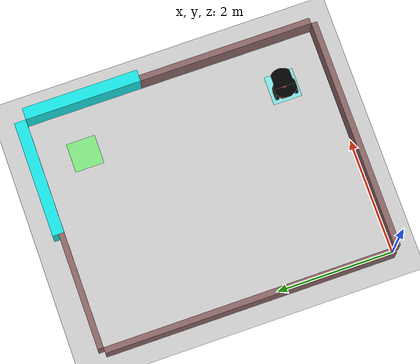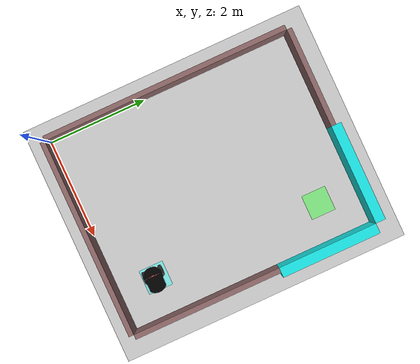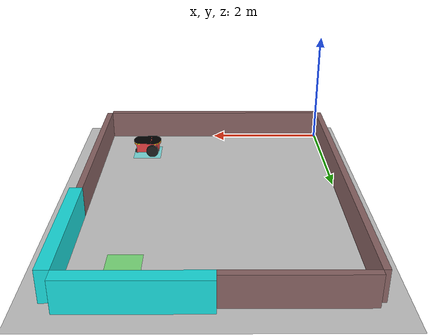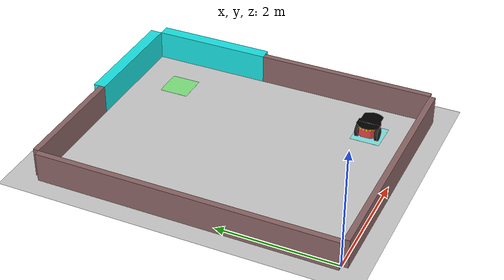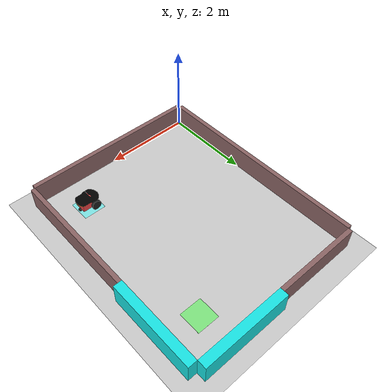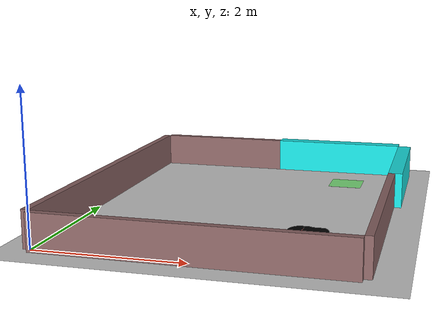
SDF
<sdf version="1.6">
 <world name="pioneer3_world">
  <physics name="1ms" type="ignored">
   <max_step_size>0.001</max_step_size>
   <real_time_factor>1.0</real_time_factor>
  </physics>
  <plugin filename="gz-sim-physics-system" name="gz::sim::systems::Physics"/>
  <plugin filename="gz-sim-sensors-system" name="gz::sim::systems::Sensors">
   <render_engine>ogre2</render_engine>
  </plugin>
  <plugin filename="gz-sim-user-commands-system" name="gz::sim::systems::UserCommands"/>
  <plugin filename="gz-sim-scene-broadcaster-system" name="gz::sim::systems::SceneBroadcaster"/>
  <plugin filename="gz-sim-contact-system" name="gz::sim::systems::Contact"/>
  <light type="directional" name="sun">
   <cast_shadows>false</cast_shadows>
   <pose>0 0 10 0 0 0</pose>
   <diffuse>0.8 0.8 0.8 1</diffuse>
   <specular>0.2 0.2 0.2 1</specular>
   <attenuation>
    <range>1000</range>
    <constant>0.9</constant>
    <linear>0.01</linear>
    <quadratic>0.001</quadratic>
   </attenuation>
   <direction>-0.5 0.1 -0.9</direction>
  </light>
  <model name="ground_plane">
   <static>true</static>
   <link name="link">
    <collision name="collision">
     <geometry><plane><normal>0 0 1</normal><size>100 100</size></plane></geometry>
    </collision>
    <visual name="visual">
     <geometry><plane><normal>0 0 1</normal><size>100 100</size></plane></geometry>
     <material>
      <ambient>0.8 0.8 0.8 1</ambient>
      <diffuse>0.8 0.8 0.8 1</diffuse>
      <specular>0.8 0.8 0.8 1</specular>
     </material>
    </visual>
   </link>
  </model>
  <include><uri>model://pioneer3dx/pioneer3dx.sdf</uri><pose>3.25 0.75 0 0 0 -3.14159265</pose></include>
  <model name="obstLoc1">
   <static>true</static>
   <pose>4.1 4 0.25 0 0 0</pose>
   <link name="obstLoc1_link">
    <collision name="obstLoc1_collision"><geometry><box><size>0.2 2 0.5</size></box></geometry></collision>
    <visual name="obstLoc1_visual">
     <geometry><box><size>0.2 2 0.5</size></box></geometry>
     <material>
      <ambient>0.1 0.9 0.9 1</ambient>
      <diffuse>0.1 0.9 0.9 1</diffuse>
      <specular>0.1 0.9 0.9 1</specular>
     </material>
    </visual>
   </link>
  </model>
  <model name="obstLoc2">
   <static>true</static>
   <pose>3 5.1 0.25 0 0 0</pose>
   <link name="obstLoc2_link">
    <collision name="obstLoc2_collision"><geometry><box><size>2 0.2 0.5</size></box></geometry></collision>
    <visual name="obstLoc2_visual">
     <geometry><box><size>2 0.2 0.5</size></box></geometry>
     <material>
      <ambient>0.1 0.9 0.9 1</ambient>
      <diffuse>0.1 0.9 0.9 1</diffuse>
      <specular>0.1 0.9 0.9 1</specular>
     </material>
    </visual>
   </link>
  </model>
  <model name="q0_indicator">
   <static>true</static>
   <pose>3.25 0.75 0.001 0 0 0</pose>
   <link name="q0_indicator_link">
    <visual name="q0_indicator_visual">
     <geometry><plane><size>0.5 0.5</size></plane></geometry>
     <material>
      <ambient>0.5 0.9 0.9 1</ambient>
      <diffuse>0.5 0.9 0.9 1</diffuse>
      <specular>0.5 0.9 0.9 1</specular>
     </material>
    </visual>
   </link>
  </model>
  <model name="qf_indicator">
   <static>true</static>
   <pose>3.25 4.25 0.001 0 0 0</pose>
   <link name="qf_indicator_link">
    <visual name="qf_indicator_visual">
     <geometry><plane><size>0.5 0.5</size></plane></geometry>
     <material>
      <ambient>0.5 0.9 0.5 1</ambient>
      <diffuse>0.5 0.9 0.5 1</diffuse>
      <specular>0.5 0.9 0.5 1</specular>
     </material>
    </visual>
   </link>
  </model>
  <model name="box_up">
   <static>true</static>
   <pose>1 5.05 0.25 0 0 0</pose>
   <link name="box_up_link">
    <collision name="box_up_collision"><geometry><box><size>2 0.1 0.5</size></box></geometry></collision>
    <visual name="box_up_visual">
     <geometry><box><size>2 0.1 0.5</size></box></geometry>
     <material>
      <ambient>0.55 0.4 0.4 1</ambient>
      <diffuse>0.55 0.4 0.4 1</diffuse>
      <specular>0.55 0.4 0.4 1</specular>
     </material>
    </visual>
   </link>
  </model>
  <model name="box_down">
   <static>true</static>
   <pose>2 -0.05 0.25 0 0 0</pose>
   <link name="box_down_link">
    <collision name="box_down_collision"><geometry><box><size>4 0.1 0.5</size></box></geometry></collision>
    <visual name="box_down_visual">
     <geometry><box><size>4 0.1 0.5</size></box></geometry>
     <material>
      <ambient>0.55 0.4 0.4 1</ambient>
      <diffuse>0.55 0.4 0.4 1</diffuse>
      <specular>0.55 0.4 0.4 1</specular>
     </material>
    </visual>
   </link>
  </model>
  <model name="box_left">
   <static>true</static>
   <pose>-0.05 2.5 0.25 0 0 0</pose>
   <link name="box_left_link">
    <collision name="box_left_collision"><geometry><box><size>0.1 5 0.5</size></box></geometry></collision>
    <visual name="box_left_visual">
     <geometry><box><size>0.1 5 0.5</size></box></geometry>
     <material>
      <ambient>0.55 0.4 0.4 1</ambient>
      <diffuse>0.55 0.4 0.4 1</diffuse>
      <specular>0.55 0.4 0.4 1</specular>
     </material>
    </visual>
   </link>
  </model>
  <model name="box_right">
   <static>true</static>
   <pose>4.05 1.5 0.25 0 0 0</pose>
   <link name="box_right_link">
    <collision name="box_left_collision"><geometry><box><size>0.1 3 0.5</size></box></geometry></collision>
    <visual name="box_right_visual">
     <geometry><box><size>0.1 3 0.5</size></box></geometry>
     <material>
      <ambient>0.55 0.4 0.4 1</ambient>
      <diffuse>0.55 0.4 0.4 1</diffuse>
      <specular>0.55 0.4 0.4 1</specular>
     </material>
    </visual>
   </link>
  </model>
 </world>
</sdf>

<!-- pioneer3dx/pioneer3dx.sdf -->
<sdf version="1.6">
  <model name="pioneer3dx">
    <link name="chassis">
      <pose>0 0 0.16 0 0 0</pose>
      <inertial>
        <mass>5.67</mass>
        <inertia>
          <ixx>0.07</ixx>
          <iyy>0.08</iyy>
          <izz>0.10</izz>
          <ixy>0</ixy>
          <ixz>0</ixz>
          <iyz>0</iyz>
        </inertia>
      </inertial>
      <collision name="collision">
        <geometry>
          <box>
            <size>0.445 0.277 0.17</size>
          </box>
        </geometry>
      </collision>
      <collision name="castor_collision">
        <pose>-0.200 0 -0.12 0 0 0</pose>
        <geometry>
          <sphere>
            <radius>0.04</radius>
          </sphere>
        </geometry>
        <surface>
          <friction>
            <ode>
              <mu>0</mu>
              <mu2>0</mu2>
              <slip1>1.0</slip1>
              <slip2>1.0</slip2>
            </ode>
          </friction>
        </surface>
      </collision>
      <visual name="visual">
        <pose>0 0 0.04 0 0 0</pose>
        <geometry>
          <mesh>
            <uri>model://pioneer3dx/meshes/chassis.dae</uri>
          </mesh>
        </geometry>
      </visual>
      <visual name="castor_visual">
        <pose>-0.200 0 -0.12 0 0 0</pose>
        <geometry>
          <sphere>
            <radius>0.04</radius>
          </sphere>
        </geometry>
        <material>
          <script>
            <uri>file://media/materials/scripts/gazebo.material</uri>
            <name>Gazebo/FlatBlack</name>
          </script>
        </material>
      </visual>
      <sensor name='gpu_lidar' type='gpu_lidar'>
        <topic>lidar</topic>
        <update_rate>10</update_rate>
        <lidar>
          <scan>
            <horizontal>
              <samples>10</samples>
              <resolution>1</resolution>
              <min_angle>-1.570796</min_angle>
              <max_angle>1.570796</max_angle>
            </horizontal>
            <vertical>
              <samples>1</samples>
              <min_angle>0</min_angle>
              <max_angle>0</max_angle>
            </vertical>
          </scan>
          <range>
            <min>0.1</min>
            <max>5.0</max>
            <resolution>0.01</resolution>
          </range>
        </lidar>
        <pose frame=''>0.12 0 0.26 0 -0 0</pose>
      </sensor>

    </link>
    <link name="right_wheel">
      <pose>0.1 -.17 0.11 0 1.5707 1.5707</pose>
      <inertial>
        <mass>1.5</mass>
        <inertia>
          <ixx>0.0051</ixx>
          <iyy>0.0051</iyy>
          <izz>0.0090</izz>
          <ixy>0</ixy>
          <ixz>0</ixz>
          <iyz>0</iyz>
        </inertia>
      </inertial>
      <collision name="collision">
        <geometry>
          <cylinder>
            <radius>0.11</radius>
            <length>0.05</length>
          </cylinder>
        </geometry>
        <surface>
          <friction>
            <ode>
              <mu>100000.0</mu>
              <mu2>100000.0</mu2>
              <slip1>0.0</slip1>
              <slip2>0.0</slip2>
            </ode>
          </friction>
        </surface>
      </collision>
      <visual name="visual">
        <geometry>
          <cylinder>
            <radius>0.11</radius>
            <length>0.05</length>
          </cylinder>
        </geometry>
        <material>
          <script>
            <uri>file://media/materials/scripts/gazebo.material</uri>
            <name>Gazebo/FlatBlack</name>
          </script>
        </material>
      </visual>
    </link>
    <link name="left_wheel">
      <pose>0.1 .17 0.11 0 1.5707 1.5707</pose>
      <inertial>
        <mass>1.5</mass>
        <inertia>
          <ixx>0.0051</ixx>
          <iyy>0.0051</iyy>
          <izz>0.0090</izz>
          <ixy>0</ixy>
          <ixz>0</ixz>
          <iyz>0</iyz>
        </inertia>
      </inertial>
      <collision name="collision">
        <geometry>
          <cylinder>
            <radius>0.11</radius>
            <length>0.05</length>
          </cylinder>
        </geometry>
        <surface>
          <friction>
            <ode>
              <mu>100000.0</mu>
              <mu2>100000.0</mu2>
              <slip1>0.0</slip1>
              <slip2>0.0</slip2>
            </ode>
          </friction>
        </surface>
      </collision>
      <visual name="visual">
        <geometry>
          <cylinder>
            <radius>0.11</radius>
            <length>0.05</length>
          </cylinder>
        </geometry>
        <material>
          <script>
            <uri>file://media/materials/scripts/gazebo.material</uri>
            <name>Gazebo/FlatBlack</name>
          </script>
        </material>
      </visual>
    </link>
    <joint type="revolute" name="left_wheel_hinge">
      <pose>0 0 -0.03 0 0 0</pose>
      <child>left_wheel</child>
      <parent>chassis</parent>
      <axis>
        <xyz>0 1 0</xyz>
        <use_parent_model_frame>true</use_parent_model_frame>
      </axis>
    </joint>
    <joint type="revolute" name="right_wheel_hinge">
      <pose>0 0 0.03 0 0 0</pose>
      <child>right_wheel</child>
      <parent>chassis</parent>
      <axis>
        <xyz>0 1 0</xyz>
        <use_parent_model_frame>true</use_parent_model_frame>
      </axis>
    </joint>
    <plugin filename="gz-sim-diff-drive-system" name="gz::sim::systems::DiffDrive">
      <left_joint>left_wheel_hinge</left_joint>
      <right_joint>right_wheel_hinge</right_joint>
    </plugin>
  </model>
</sdf>
